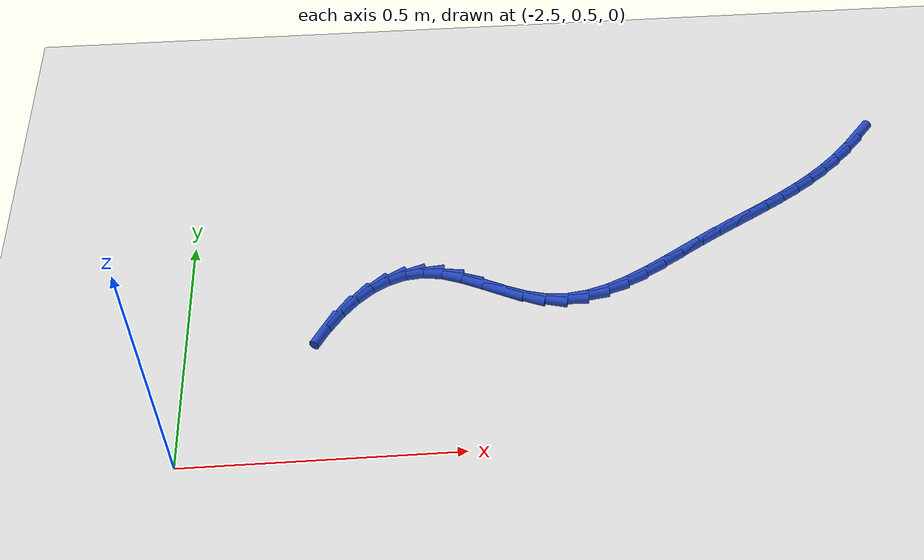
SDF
<sdf version="1.6">
 <world name="default">
  <model name="ground_plane">
   <static>1</static>
   <link name="link">
    <collision name="collision">
     <geometry><plane><normal>0 0 1</normal><size>100 100</size></plane></geometry>
     <surface><friction><ode><mu>100</mu><mu2>50</mu2></ode></friction></surface>
    </collision>
    <visual name="visual">
     <cast_shadows>0</cast_shadows>
     <geometry><plane><normal>0 0 1</normal><size>100 100</size></plane></geometry>
     <material>
      <script><uri>file://media/materials/scripts/gazebo.material</uri><name>Gazebo/WhiteGlow</name></script>
     </material>
    </visual>
   </link>
  </model>
  <model name="line">
   <link name="link_48">
    <pose>-1.1817012509308837 1.207048607135749 0.01 0 1.57 0.8671612460572974</pose>
    <collision name="collision">
     <geometry><cylinder><radius>0.01</radius><length>0.08</length></cylinder></geometry>
    </collision>
    <visual name="visual">
     <material>
      <script><name>Gazebo/Blue</name><uri>file://media/materials/scripts/gazebo.material</uri></script>
     </material>
     <geometry><cylinder><radius>0.01</radius><length>0.08</length></cylinder></geometry>
    </visual>
   </link>
   <link name="link_49">
    <pose>-1.2103682517319463 1.173263957631426 0.01 0 1.57 0.7976299146507713</pose>
    <collision name="collision">
     <geometry><cylinder><radius>0.01</radius><length>0.08</length></cylinder></geometry>
    </collision>
    <visual name="visual">
     <material>
      <script><name>Gazebo/Blue</name><uri>file://media/materials/scripts/gazebo.material</uri></script>
     </material>
     <geometry><cylinder><radius>0.01</radius><length>0.08</length></cylinder></geometry>
    </visual>
   </link>
   <link name="link_50">
    <pose>-1.2399664722741899 1.1429326575396117 0.01 0 1.57 0.7317486666701256</pose>
    <collision name="collision">
     <geometry><cylinder><radius>0.01</radius><length>0.08</length></cylinder></geometry>
    </collision>
    <visual name="visual">
     <material>
      <script><name>Gazebo/Blue</name><uri>file://media/materials/scripts/gazebo.material</uri></script>
     </material>
     <geometry><cylinder><radius>0.01</radius><length>0.08</length></cylinder></geometry>
    </visual>
   </link>
   <link name="link_51">
    <pose>-1.270452445449271 1.1155540707544225 0.01 0 1.57 0.6720552955293879</pose>
    <collision name="collision">
     <geometry><cylinder><radius>0.01</radius><length>0.08</length></cylinder></geometry>
    </collision>
    <visual name="visual">
     <material>
      <script><name>Gazebo/Blue</name><uri>file://media/materials/scripts/gazebo.material</uri></script>
     </material>
     <geometry><cylinder><radius>0.01</radius><length>0.08</length></cylinder></geometry>
    </visual>
   </link>
   <link name="link_52">
    <pose>-1.3017827041488452 1.0906275611699736 0.01 0 1.57 0.6207500669049182</pose>
    <collision name="collision">
     <geometry><cylinder><radius>0.01</radius><length>0.08</length></cylinder></geometry>
    </collision>
    <visual name="visual">
     <material>
      <script><name>Gazebo/Blue</name><uri>file://media/materials/scripts/gazebo.material</uri></script>
     </material>
     <geometry><cylinder><radius>0.01</radius><length>0.08</length></cylinder></geometry>
    </visual>
   </link>
   <link name="link_53">
    <pose>-1.3339137812645683 1.0676524926803814 0.01 0 1.57 0.5795063437029108</pose>
    <collision name="collision">
     <geometry><cylinder><radius>0.01</radius><length>0.08</length></cylinder></geometry>
    </collision>
    <visual name="visual">
     <material>
      <script><name>Gazebo/Blue</name><uri>file://media/materials/scripts/gazebo.material</uri></script>
     </material>
     <geometry><cylinder><radius>0.01</radius><length>0.08</length></cylinder></geometry>
    </visual>
   </link>
   <link name="link_54">
    <pose>-1.3668022096880974 1.0461282291797604 0.01 0 1.57 0.5494015451554398</pose>
    <collision name="collision">
     <geometry><cylinder><radius>0.01</radius><length>0.08</length></cylinder></geometry>
    </collision>
    <visual name="visual">
     <material>
      <script><name>Gazebo/Blue</name><uri>file://media/materials/scripts/gazebo.material</uri></script>
     </material>
     <geometry><cylinder><radius>0.01</radius><length>0.08</length></cylinder></geometry>
    </visual>
   </link>
   <link name="link_55">
    <pose>-1.4004045223110875 1.0255541345622268 0.01 0 1.57 0.5309462133035222</pose>
    <collision name="collision">
     <geometry><cylinder><radius>0.01</radius><length>0.08</length></cylinder></geometry>
    </collision>
    <visual name="visual">
     <material>
      <script><name>Gazebo/Blue</name><uri>file://media/materials/scripts/gazebo.material</uri></script>
     </material>
     <geometry><cylinder><radius>0.01</radius><length>0.08</length></cylinder></geometry>
    </visual>
   </link>
   <link name="link_56">
    <pose>-1.4346772520251951 1.0054295727218967 0.01 0 1.57 0.5241643345688503</pose>
    <collision name="collision">
     <geometry><cylinder><radius>0.01</radius><length>0.08</length></cylinder></geometry>
    </collision>
    <visual name="visual">
     <material>
      <script><name>Gazebo/Blue</name><uri>file://media/materials/scripts/gazebo.material</uri></script>
     </material>
     <geometry><cylinder><radius>0.01</radius><length>0.08</length></cylinder></geometry>
    </visual>
   </link>
   <link name="link_57">
    <pose>-1.4695769317220766 0.985253907552885 0.01 0 1.57 0.5286817761652555</pose>
    <collision name="collision">
     <geometry><cylinder><radius>0.01</radius><length>0.08</length></cylinder></geometry>
    </collision>
    <visual name="visual">
     <material>
      <script><name>Gazebo/Blue</name><uri>file://media/materials/scripts/gazebo.material</uri></script>
     </material>
     <geometry><cylinder><radius>0.01</radius><length>0.08</length></cylinder></geometry>
    </visual>
   </link>
   <link name="link_58">
    <pose>-1.5050600942933878 0.964526502949308 0.01 0 1.57 0.5437983752880435</pose>
    <collision name="collision">
     <geometry><cylinder><radius>0.01</radius><length>0.08</length></cylinder></geometry>
    </collision>
    <visual name="visual">
     <material>
      <script><name>Gazebo/Blue</name><uri>file://media/materials/scripts/gazebo.material</uri></script>
     </material>
     <geometry><cylinder><radius>0.01</radius><length>0.08</length></cylinder></geometry>
    </visual>
   </link>
   <link name="link_59">
    <pose>-1.5410832726307842 0.9427467228052807 0.01 0 1.57 0.5640622509140586</pose>
    <collision name="collision">
     <geometry><cylinder><radius>0.01</radius><length>0.08</length></cylinder></geometry>
    </collision>
    <visual name="visual">
     <material>
      <script><name>Gazebo/Blue</name><uri>file://media/materials/scripts/gazebo.material</uri></script>
     </material>
     <geometry><cylinder><radius>0.01</radius><length>0.08</length></cylinder></geometry>
    </visual>
   </link>
   <link name="link_60">
    <pose>-1.5776025631585504 0.9196437797439346 0.01 0 1.57 0.5661444793515885</pose>
    <collision name="collision">
     <geometry><cylinder><radius>0.01</radius><length>0.08</length></cylinder></geometry>
    </collision>
    <visual name="visual">
     <material>
      <script><name>Gazebo/Blue</name><uri>file://media/materials/scripts/gazebo.material</uri></script>
     </material>
     <geometry><cylinder><radius>0.01</radius><length>0.08</length></cylinder></geometry>
    </visual>
   </link>
   <link name="link_61">
    <pose>-1.6145717809461695 0.8961482740165974 0.01 0 1.57 0.5432266460889836</pose>
    <collision name="collision">
     <geometry><cylinder><radius>0.01</radius><length>0.08</length></cylinder></geometry>
    </collision>
    <visual name="visual">
     <material>
      <script><name>Gazebo/Blue</name><uri>file://media/materials/scripts/gazebo.material</uri></script>
     </material>
     <geometry><cylinder><radius>0.01</radius><length>0.08</length></cylinder></geometry>
    </visual>
   </link>
   <link name="link_62">
    <pose>-1.651943998162261 0.8735820259990037 0.01 0 1.57 0.4939357228277672</pose>
    <collision name="collision">
     <geometry><cylinder><radius>0.01</radius><length>0.08</length></cylinder></geometry>
    </collision>
    <visual name="visual">
     <material>
      <script><name>Gazebo/Blue</name><uri>file://media/materials/scripts/gazebo.material</uri></script>
     </material>
     <geometry><cylinder><radius>0.01</radius><length>0.08</length></cylinder></geometry>
    </visual>
   </link>
   <link name="link_63">
    <pose>-1.6896722865719374 0.8532670685573894 0.01 0 1.57 0.41462061402821904</pose>
    <collision name="collision">
     <geometry><cylinder><radius>0.01</radius><length>0.08</length></cylinder></geometry>
    </collision>
    <visual name="visual">
     <material>
      <script><name>Gazebo/Blue</name><uri>file://media/materials/scripts/gazebo.material</uri></script>
     </material>
     <geometry><cylinder><radius>0.01</radius><length>0.08</length></cylinder></geometry>
    </visual>
   </link>
   <link name="link_64">
    <pose>-1.7277097179403123 0.8365254345579901 0.01 0 1.57 0.2999716140282956</pose>
    <collision name="collision">
     <geometry><cylinder><radius>0.01</radius><length>0.08</length></cylinder></geometry>
    </collision>
    <visual name="visual">
     <material>
      <script><name>Gazebo/Blue</name><uri>file://media/materials/scripts/gazebo.material</uri></script>
     </material>
     <geometry><cylinder><radius>0.01</radius><length>0.08</length></cylinder></geometry>
    </visual>
   </link>
   <link name="link_65">
    <pose>-1.766009364032499 0.8246791568670417 0.01 0 1.57 0.14512080544808487</pose>
    <collision name="collision">
     <geometry><cylinder><radius>0.01</radius><length>0.08</length></cylinder></geometry>
    </collision>
    <visual name="visual">
     <material>
      <script><name>Gazebo/Blue</name><uri>file://media/materials/scripts/gazebo.material</uri></script>
     </material>
     <geometry><cylinder><radius>0.01</radius><length>0.08</length></cylinder></geometry>
    </visual>
   </link>
   <link name="link_66">
    <pose>-1.8045242966136104 0.81905026835078 0.01 0 1.57 -0.04934901628007224</pose>
    <collision name="collision">
     <geometry><cylinder><radius>0.01</radius><length>0.08</length></cylinder></geometry>
    </collision>
    <visual name="visual">
     <material>
      <script><name>Gazebo/Blue</name><uri>file://media/materials/scripts/gazebo.material</uri></script>
     </material>
     <geometry><cylinder><radius>0.01</radius><length>0.08</length></cylinder></geometry>
    </visual>
   </link>
   <link name="link_67">
    <pose>-1.843207587448761 0.820960801875441 0.01 0 1.57 -0.2572270604320043</pose>
    <collision name="collision">
     <geometry><cylinder><radius>0.01</radius><length>0.08</length></cylinder></geometry>
    </collision>
    <visual name="visual">
     <material>
      <script><name>Gazebo/Blue</name><uri>file://media/materials/scripts/gazebo.material</uri></script>
     </material>
     <geometry><cylinder><radius>0.01</radius><length>0.08</length></cylinder></geometry>
    </visual>
   </link>
   <link name="link_68">
    <pose>-1.881985495158427 0.8311615069107433 0.01 0 1.57 -0.3947397680048108</pose>
    <collision name="collision">
     <geometry><cylinder><radius>0.01</radius><length>0.08</length></cylinder></geometry>
    </collision>
    <visual name="visual">
     <material>
      <script><name>Gazebo/Blue</name><uri>file://media/materials/scripts/gazebo.material</uri></script>
     </material>
     <geometry><cylinder><radius>0.01</radius><length>0.08</length></cylinder></geometry>
    </visual>
   </link>
   <link name="link_69">
    <pose>-1.9206369408817314 0.8472639466083799 0.01 0 1.57 -0.45136773316618245</pose>
    <collision name="collision">
     <geometry><cylinder><radius>0.01</radius><length>0.08</length></cylinder></geometry>
    </collision>
    <visual name="visual">
     <material>
      <script><name>Gazebo/Blue</name><uri>file://media/materials/scripts/gazebo.material</uri></script>
     </material>
     <geometry><cylinder><radius>0.01</radius><length>0.08</length></cylinder></geometry>
    </visual>
   </link>
   <link name="link_70">
    <pose>-1.9588905039122952 0.8658070959967465 0.01 0 1.57 -0.4362470468032239</pose>
    <collision name="collision">
     <geometry><cylinder><radius>0.01</radius><length>0.08</length></cylinder></geometry>
    </collision>
    <visual name="visual">
     <material>
      <script><name>Gazebo/Blue</name><uri>file://media/materials/scripts/gazebo.material</uri></script>
     </material>
     <geometry><cylinder><radius>0.01</radius><length>0.08</length></cylinder></geometry>
    </visual>
   </link>
   <link name="link_71">
    <pose>-1.996474720004223 0.8833290024471392 0.01 0 1.57 -0.3418564024923335</pose>
    <collision name="collision">
     <geometry><cylinder><radius>0.01</radius><length>0.08</length></cylinder></geometry>
    </collision>
    <visual name="visual">
     <material>
      <script><name>Gazebo/Blue</name><uri>file://media/materials/scripts/gazebo.material</uri></script>
     </material>
     <geometry><cylinder><radius>0.01</radius><length>0.08</length></cylinder></geometry>
    </visual>
   </link>
   <link name="link_72">
    <pose>-2.0331181249116184 0.8963677133308543 0.01 0 1.57 -0.14794998215909616</pose>
    <collision name="collision">
     <geometry><cylinder><radius>0.01</radius><length>0.08</length></cylinder></geometry>
    </collision>
    <visual name="visual">
     <material>
      <script><name>Gazebo/Blue</name><uri>file://media/materials/scripts/gazebo.material</uri></script>
     </material>
     <geometry><cylinder><radius>0.01</radius><length>0.08</length></cylinder></geometry>
    </visual>
   </link>
   <link name="link_73">
    <pose>-2.0685567427454483 0.9016494502219958 0.01 0 1.57 0.0989130680142384</pose>
    <collision name="collision">
     <geometry><cylinder><radius>0.01</radius><length>0.08</length></cylinder></geometry>
    </collision>
    <visual name="visual">
     <material>
      <script><name>Gazebo/Blue</name><uri>file://media/materials/scripts/gazebo.material</uri></script>
     </material>
     <geometry><cylinder><radius>0.01</radius><length>0.08</length></cylinder></geometry>
    </visual>
   </link>
   <link name="link_74">
    <pose>-2.1026208555263266 0.8982690326827939 0.01 0 1.57 0.33460904065364366</pose>
    <collision name="collision">
     <geometry><cylinder><radius>0.01</radius><length>0.08</length></cylinder></geometry>
    </collision>
    <visual name="visual">
     <material>
      <script><name>Gazebo/Blue</name><uri>file://media/materials/scripts/gazebo.material</uri></script>
     </material>
     <geometry><cylinder><radius>0.01</radius><length>0.08</length></cylinder></geometry>
    </visual>
   </link>
   <link name="link_75">
    <pose>-2.135205163044977 0.886940028253918 0.01 0 1.57 0.5388144406829242</pose>
    <collision name="collision">
     <geometry><cylinder><radius>0.01</radius><length>0.08</length></cylinder></geometry>
    </collision>
    <visual name="visual">
     <material>
      <script><name>Gazebo/Blue</name><uri>file://media/materials/scripts/gazebo.material</uri></script>
     </material>
     <geometry><cylinder><radius>0.01</radius><length>0.08</length></cylinder></geometry>
    </visual>
   </link>
   <link name="link_76">
    <pose>-2.166205613019182 0.8684073635156372 0.01 0 1.57 0.7059922136339072</pose>
    <collision name="collision">
     <geometry><cylinder><radius>0.01</radius><length>0.08</length></cylinder></geometry>
    </collision>
    <visual name="visual">
     <material>
      <script><name>Gazebo/Blue</name><uri>file://media/materials/scripts/gazebo.material</uri></script>
     </material>
     <geometry><cylinder><radius>0.01</radius><length>0.08</length></cylinder></geometry>
    </visual>
   </link>
   <link name="link_77">
    <pose>-2.195518153166726 0.8434159650482197 0.01 0 1.57 0.8400381781571116</pose>
    <collision name="collision">
     <geometry><cylinder><radius>0.01</radius><length>0.08</length></cylinder></geometry>
    </collision>
    <visual name="visual">
     <material>
      <script><name>Gazebo/Blue</name><uri>file://media/materials/scripts/gazebo.material</uri></script>
     </material>
     <geometry><cylinder><radius>0.01</radius><length>0.08</length></cylinder></geometry>
    </visual>
   </link>
   <link name="link_78">
    <pose>-2.223038731205391 0.8127107594319339 0.01 0 1.57 0.9478962254850726</pose>
    <collision name="collision">
     <geometry><cylinder><radius>0.01</radius><length>0.08</length></cylinder></geometry>
    </collision>
    <visual name="visual">
     <material>
      <script><name>Gazebo/Blue</name><uri>file://media/materials/scripts/gazebo.material</uri></script>
     </material>
     <geometry><cylinder><radius>0.01</radius><length>0.08</length></cylinder></geometry>
    </visual>
   </link>
   <link name="link_79">
    <pose>-2.2486632948529603 0.7770366732470487 0.01 0 1.57 1.0361898036134303</pose>
    <collision name="collision">
     <geometry><cylinder><radius>0.01</radius><length>0.08</length></cylinder></geometry>
    </collision>
    <visual name="visual">
     <material>
      <script><name>Gazebo/Blue</name><uri>file://media/materials/scripts/gazebo.material</uri></script>
     </material>
     <geometry><cylinder><radius>0.01</radius><length>0.08</length></cylinder></geometry>
    </visual>
   </link>
  </model>
 </world>
</sdf>
